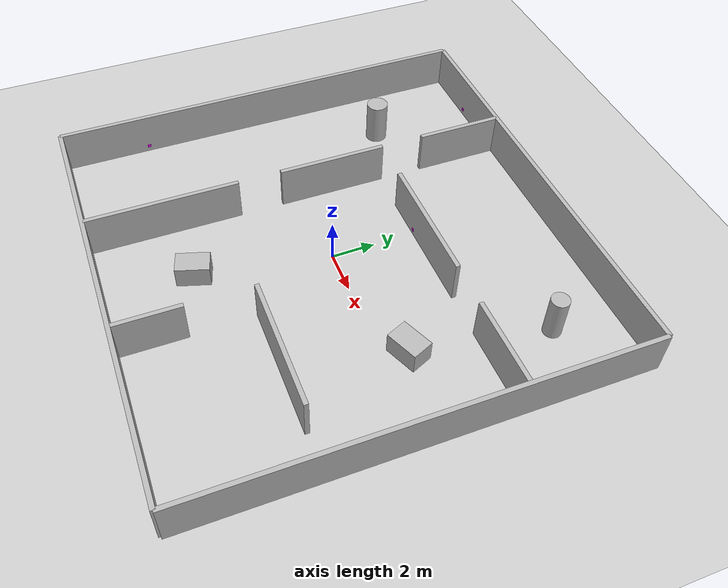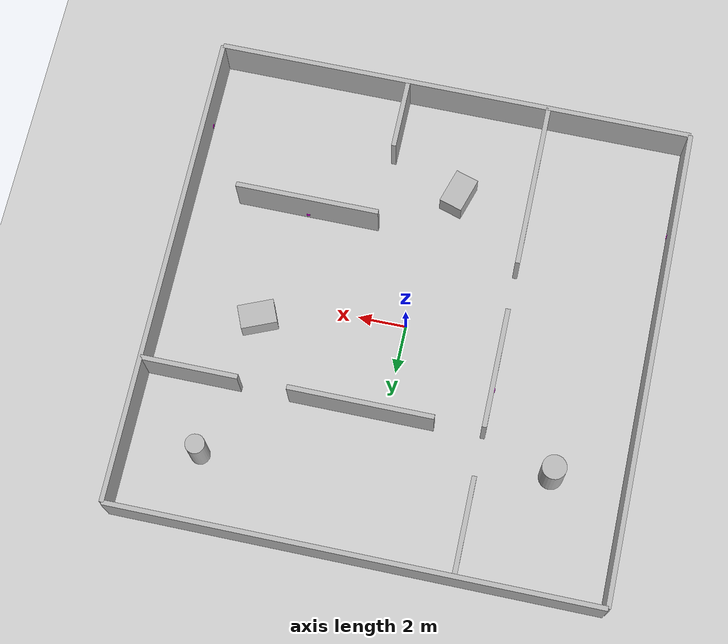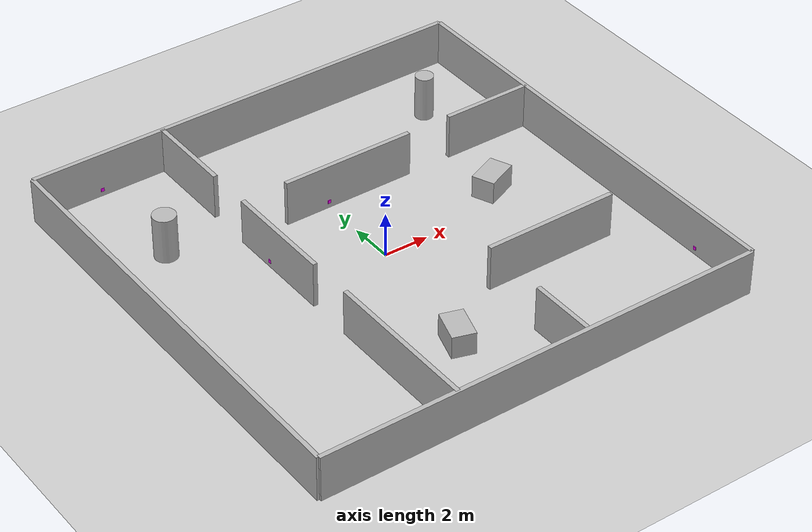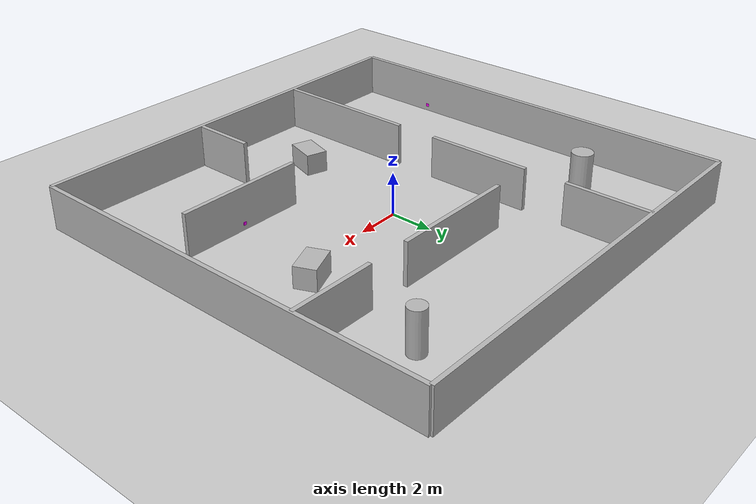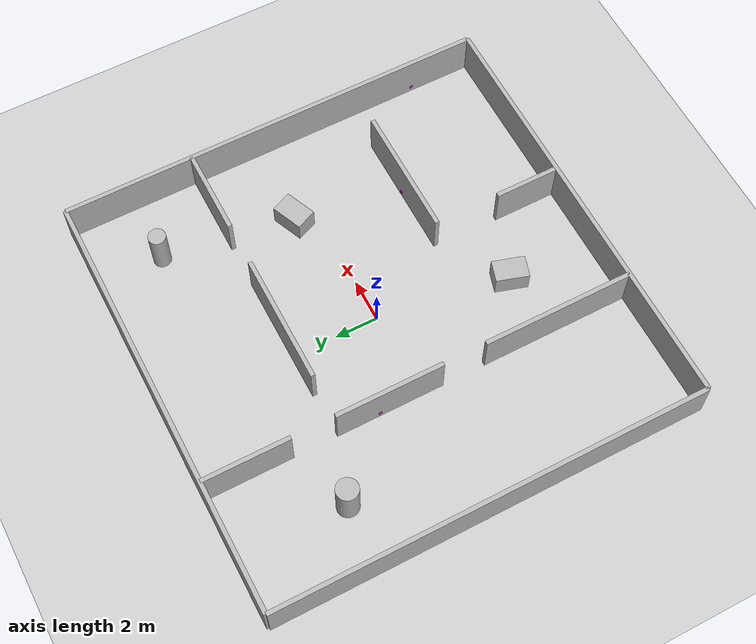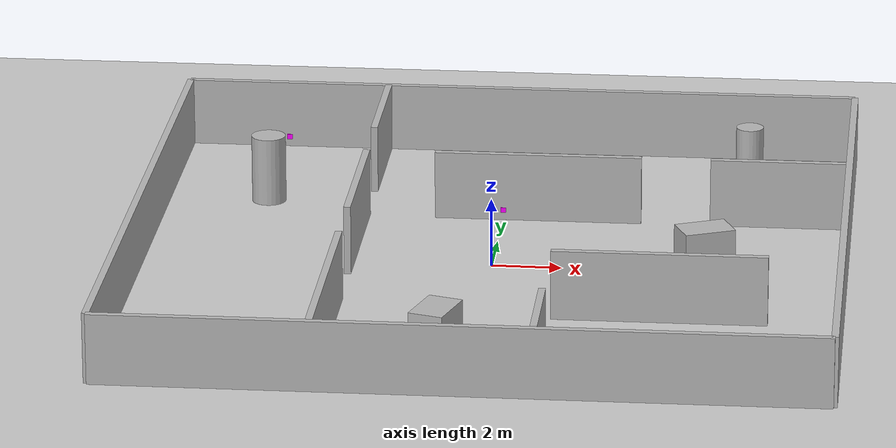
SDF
<?xml version="1.0" ?>
<sdf version="1.8">
  <world name="leo_world">
    <physics name="1ms" type="dart">
      <max_step_size>0.001</max_step_size>
      <real_time_factor>1.0</real_time_factor>
    </physics>

    <plugin filename="gz-sim-physics-system"
            name="gz::sim::systems::Physics"/>
    <plugin filename="gz-sim-user-commands-system"
            name="gz::sim::systems::UserCommands"/>
    <plugin filename="gz-sim-scene-broadcaster-system"
            name="gz::sim::systems::SceneBroadcaster"/>
    <plugin filename="gz-sim-sensors-system"
            name="gz::sim::systems::Sensors">
      <render_engine>ogre2</render_engine>
    </plugin>

    <plugin filename="gz-sim-imu-system"
            name="gz::sim::systems::Imu"/>
    <light type="directional" name="sun">
      <cast_shadows>true</cast_shadows>
      <pose>0 0 10 0 0 0</pose>
      <diffuse>0.8 0.8 0.8 1</diffuse>
      <specular>0.2 0.2 0.2 1</specular>
      <direction>-0.5 0.1 -0.9</direction>
    </light>

    <model name="ground_plane">
      <static>true</static>
      <link name="link">
        <collision name="collision">
          <geometry><plane><normal>0 0 1</normal></plane></geometry>
        </collision>
        <visual name="visual">
          <geometry><plane><normal>0 0 1</normal><size>100 100</size></plane></geometry>
          <material>
            <ambient>0.8 0.8 0.8 1</ambient>
            <diffuse>0.8 0.8 0.8 1</diffuse>
          </material>
        </visual>
      </link>
    </model>

    <model name="wall_north">
      <static>true</static>
      <pose>0 10 1 0 0 0</pose>
      <link name="link">
        <collision name="collision"><geometry><box><size>20 0.2 2</size></box></geometry></collision>
        <visual name="visual"><geometry><box><size>20 0.2 2</size></box></geometry></visual>
      </link>
    </model>

    <model name="wall_south">
      <static>true</static>
      <pose>0 -10 1 0 0 0</pose>
      <link name="link">
        <collision name="collision"><geometry><box><size>20 0.2 2</size></box></geometry></collision>
        <visual name="visual"><geometry><box><size>20 0.2 2</size></box></geometry></visual>
      </link>
    </model>

    <model name="wall_east">
      <static>true</static>
      <pose>10 0 1 0 0 0</pose>
      <link name="link">
        <collision name="collision"><geometry><box><size>0.2 20 2</size></box></geometry></collision>
        <visual name="visual"><geometry><box><size>0.2 20 2</size></box></geometry></visual>
      </link>
    </model>

    <model name="wall_west">
      <static>true</static>
      <pose>-10 0 1 0 0 0</pose>
      <link name="link">
        <collision name="collision"><geometry><box><size>0.2 20 2</size></box></geometry></collision>
        <visual name="visual"><geometry><box><size>0.2 20 2</size></box></geometry></visual>
      </link>
    </model>

    <!-- Interior walls: rooms with 2 m doorways for exploration testing -->
    <model name="wall_inner_w_south">
      <static>true</static>
      <pose>-4 -6.5 1 0 0 0</pose>
      <link name="link">
        <collision name="collision"><geometry><box><size>0.2 7 2</size></box></geometry></collision>
        <visual name="visual"><geometry><box><size>0.2 7 2</size></box></geometry></visual>
      </link>
    </model>

    <model name="wall_inner_w_mid">
      <static>true</static>
      <pose>-4 1.5 1 0 0 0</pose>
      <link name="link">
        <collision name="collision"><geometry><box><size>0.2 5 2</size></box></geometry></collision>
        <visual name="visual"><geometry><box><size>0.2 5 2</size></box></geometry></visual>
      </link>
    </model>

    <model name="wall_inner_w_north">
      <static>true</static>
      <pose>-4 8 1 0 0 0</pose>
      <link name="link">
        <collision name="collision"><geometry><box><size>0.2 4 2</size></box></geometry></collision>
        <visual name="visual"><geometry><box><size>0.2 4 2</size></box></geometry></visual>
      </link>
    </model>

    <model name="wall_inner_n_left">
      <static>true</static>
      <pose>1 4 1 0 0 0</pose>
      <link name="link">
        <collision name="collision"><geometry><box><size>6 0.2 2</size></box></geometry></collision>
        <visual name="visual"><geometry><box><size>6 0.2 2</size></box></geometry></visual>
      </link>
    </model>

    <model name="wall_inner_n_right">
      <static>true</static>
      <pose>8 4 1 0 0 0</pose>
      <link name="link">
        <collision name="collision"><geometry><box><size>4 0.2 2</size></box></geometry></collision>
        <visual name="visual"><geometry><box><size>4 0.2 2</size></box></geometry></visual>
      </link>
    </model>

    <model name="wall_inner_se">
      <static>true</static>
      <pose>5 -4 1 0 0 0</pose>
      <link name="link">
        <collision name="collision"><geometry><box><size>6 0.2 2</size></box></geometry></collision>
        <visual name="visual"><geometry><box><size>6 0.2 2</size></box></geometry></visual>
      </link>
    </model>

    <model name="wall_inner_s_stub">
      <static>true</static>
      <pose>2 -8.5 1 0 0 0</pose>
      <link name="link">
        <collision name="collision"><geometry><box><size>0.2 3 2</size></box></geometry></collision>
        <visual name="visual"><geometry><box><size>0.2 3 2</size></box></geometry></visual>
      </link>
    </model>

    <!-- Free-standing obstacles -->
    <model name="crate_1">
      <static>true</static>
      <pose>6 1 0.5 0 0 0.4</pose>
      <link name="link">
        <collision name="collision"><geometry><box><size>1.5 1 1</size></box></geometry></collision>
        <visual name="visual"><geometry><box><size>1.5 1 1</size></box></geometry></visual>
      </link>
    </model>

    <model name="crate_2">
      <static>true</static>
      <pose>-1 -6 0.5 0 0 -0.3</pose>
      <link name="link">
        <collision name="collision"><geometry><box><size>1 1.5 1</size></box></geometry></collision>
        <visual name="visual"><geometry><box><size>1 1.5 1</size></box></geometry></visual>
      </link>
    </model>

    <model name="pillar_1">
      <static>true</static>
      <pose>-7 5 1 0 0 0</pose>
      <link name="link">
        <collision name="collision"><geometry><cylinder><radius>0.5</radius><length>2</length></cylinder></geometry></collision>
        <visual name="visual"><geometry><cylinder><radius>0.5</radius><length>2</length></cylinder></geometry></visual>
      </link>
    </model>

    <model name="pillar_2">
      <static>true</static>
      <pose>7 7 1 0 0 0</pose>
      <link name="link">
        <collision name="collision"><geometry><cylinder><radius>0.4</radius><length>2</length></cylinder></geometry></collision>
        <visual name="visual"><geometry><cylinder><radius>0.4</radius><length>2</length></cylinder></geometry></visual>
      </link>
    </model>

    <!-- Visual "ArUco" markers (poses mirror
         leo_rover_exploration/config/mock_markers_leo_world.yaml) -->
    <model name="marker_1">
      <static>true</static>
      <pose>-9.88 -6.0 0.3 0 0 0.0</pose>
      <link name="link">
        <visual name="visual">
          <geometry><box><size>0.02 0.15 0.15</size></box></geometry>
          <material><ambient>1 0 1 1</ambient><diffuse>1 0 1 1</diffuse></material>
        </visual>
      </link>
    </model>
    <model name="marker_2">
      <static>true</static>
      <pose>-7.0 9.88 0.3 0 0 -1.5708</pose>
      <link name="link">
        <visual name="visual">
          <geometry><box><size>0.02 0.15 0.15</size></box></geometry>
          <material><ambient>1 0 1 1</ambient><diffuse>1 0 1 1</diffuse></material>
        </visual>
      </link>
    </model>
    <model name="marker_3">
      <static>true</static>
      <pose>-4.12 2.0 0.3 0 0 3.1416</pose>
      <link name="link">
        <visual name="visual">
          <geometry><box><size>0.02 0.15 0.15</size></box></geometry>
          <material><ambient>1 0 1 1</ambient><diffuse>1 0 1 1</diffuse></material>
        </visual>
      </link>
    </model>
    <model name="marker_4">
      <static>true</static>
      <pose>0.0 3.88 0.3 0 0 -1.5708</pose>
      <link name="link">
        <visual name="visual">
          <geometry><box><size>0.02 0.15 0.15</size></box></geometry>
          <material><ambient>1 0 1 1</ambient><diffuse>1 0 1 1</diffuse></material>
        </visual>
      </link>
    </model>
    <model name="marker_5">
      <static>true</static>
      <pose>9.88 -7.0 0.3 0 0 3.1416</pose>
      <link name="link">
        <visual name="visual">
          <geometry><box><size>0.02 0.15 0.15</size></box></geometry>
          <material><ambient>1 0 1 1</ambient><diffuse>1 0 1 1</diffuse></material>
        </visual>
      </link>
    </model>
    <model name="marker_6">
      <static>true</static>
      <pose>5.0 -3.88 0.3 0 0 1.5708</pose>
      <link name="link">
        <visual name="visual">
          <geometry><box><size>0.02 0.15 0.15</size></box></geometry>
          <material><ambient>1 0 1 1</ambient><diffuse>1 0 1 1</diffuse></material>
        </visual>
      </link>
    </model>

  </world>
</sdf>
